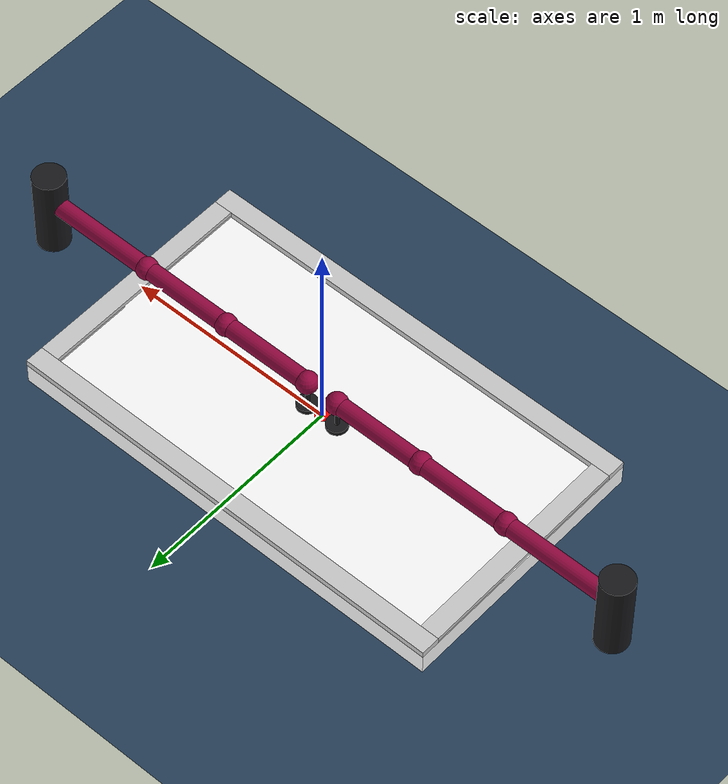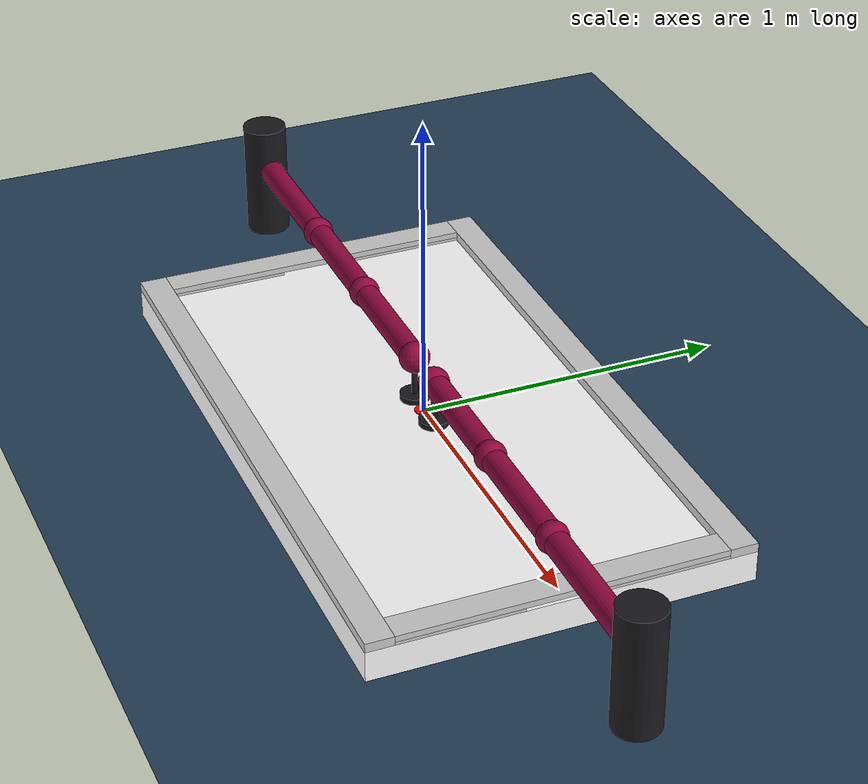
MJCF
<mujoco model="AirHockeySingle">

    <include file="planar_robot_1.xml"/>

    <include file="planar_robot_2.xml"/>

    <include file="../table.xml"/>

    <contact>
        <exclude body1="planar_robot_1/body_ee" body2="table_surface"/>
        <exclude body1="planar_robot_1/body_hand" body2="table_surface"/>
        <exclude body1="planar_robot_1/body_3" body2="table_surface"/>
        <exclude body1="planar_robot_1/body_2" body2="table_surface"/>
        <exclude body1="planar_robot_1/body_1" body2="table_surface"/>
        <exclude body1="planar_robot_1/base" body2="table_surface"/>
        <exclude body1="planar_robot_1/body_ee" body2="rim"/>
        <exclude body1="planar_robot_1/body_hand" body2="rim"/>
        <exclude body1="planar_robot_1/body_3" body2="rim"/>
        <exclude body1="planar_robot_1/body_2" body2="rim"/>
        <exclude body1="planar_robot_1/body_1" body2="rim"/>
        <exclude body1="planar_robot_1/base" body2="rim"/>

        <exclude body1="planar_robot_2/body_ee" body2="table_surface"/>
        <exclude body1="planar_robot_2/body_hand" body2="table_surface"/>
        <exclude body1="planar_robot_2/body_3" body2="table_surface"/>
        <exclude body1="planar_robot_2/body_2" body2="table_surface"/>
        <exclude body1="planar_robot_2/body_1" body2="table_surface"/>
        <exclude body1="planar_robot_2/base" body2="table_surface"/>
        <exclude body1="planar_robot_2/body_ee" body2="rim"/>
        <exclude body1="planar_robot_2/body_hand" body2="rim"/>
        <exclude body1="planar_robot_2/body_3" body2="rim"/>
        <exclude body1="planar_robot_2/body_2" body2="rim"/>
        <exclude body1="planar_robot_2/body_1" body2="rim"/>
        <exclude body1="planar_robot_2/base" body2="rim"/>
    </contact>

</mujoco>

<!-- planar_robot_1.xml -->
<mujoco model="planar_robot_1">
    <compiler autolimits="true" angle="radian"/>
    <asset>
        <material name="dark_red" rgba="0.58 0.03 0.25 1"/>
        <material name="black" rgba="0.1 0.1 0.11 1"/>
    </asset>

    <default>
        <default class="visual">
            <geom contype="0" conaffinity="0"/>
        </default>

        <default class="robot">
            <geom condim="4" solref="0.02 0.3" priority="2"/>
        </default>
    </default>

    <worldbody>
        <body name="planar_robot_1/base" pos="-1.51 0 -0.1">
            <geom type="cylinder" material="black" size="0.075 0.2" pos="0 0 0.2" class="visual"/>
            <inertial pos="0 0 0" mass="1" diaginertia="0.05 0.018 0.044"/>
            <body name="planar_robot_1/body_1" pos="0 0 0.25">
                <joint name="planar_robot_1/joint_1" axis="0 0 1" range="-2.9670597283903604 2.9670597283903604"/>
                <inertial pos="0.25 0 0" mass="3" diaginertia="0.064375 0.064375 0.00375"/>
                <geom class="robot" type="cylinder" material="dark_red" size="0.04 0.275" euler="0 1.57079632679 0" pos="0.275 0 0" />
                <body name="planar_robot_1/body_2" pos="0.55 0 0" >
                    <joint name="planar_robot_1/joint_2" axis="0 0 1" range="-1.8 1.8"/>
                    <inertial pos="0.2 0 0" mass="2" diaginertia="0.0335 0.0335 0.003"/>
                    <geom class="robot" type="cylinder" material="dark_red" size="0.04 0.22" euler="0 1.57079632679 0" pos="0.22 0 0"/>
                    <geom class="robot" type="sphere" material="dark_red" size="0.05"/>
                    <body name="planar_robot_1/body_3" pos="0.44 0 0" >
                        <joint name="planar_robot_1/joint_3" axis="0 0 1" range="-2.0943951023931953 2.0943951023931953"/>
                        <inertial pos="0.2 0 0" mass="2" diaginertia="0.0335 0.0335 0.003"/>
                        <geom class="robot" type="cylinder" material="dark_red" size="0.04 0.22" euler="0 1.57079632679 0" pos="0.22 0 0"/>
                        <geom class="robot" type="sphere" material="dark_red" size="0.05"/>
                        <body name="planar_robot_1/body_hand" pos="0.44 0 0">
                            <inertial pos="0 0 0" mass="0.1" diaginertia="0.0008 0.0023 0.0023"/>
                            <geom class="robot" type="sphere" material="dark_red" size="0.05"/>
                            <geom class="robot" type="cylinder" material="black" size="0.01 0.075" pos="0 0 -0.075"/>
                            <body name="planar_robot_1/body_ee" pos="0 0 -0.15">
                                <inertial pos="0 0 0" mass="0.1" diaginertia="0.0008 0.0023 0.0023"/>
                                <geom class="robot" name="planar_robot_1/ee" type="cylinder" material="black" size="0.04815 0.01" pos="0 0 0.01" friction="0 0 0"/>
                            </body>
                        </body>
                    </body>
                </body>
            </body>
        </body>
    </worldbody>

    <actuator>
        <motor name="planar_robot_1/joint_1" joint="planar_robot_1/joint_1" ctrlrange="-100 100"/>
        <motor name="planar_robot_1/joint_2" joint="planar_robot_1/joint_2" ctrlrange="-50 50"/>
        <motor name="planar_robot_1/joint_3" joint="planar_robot_1/joint_3" ctrlrange="-30 30"/>
    </actuator>
</mujoco>

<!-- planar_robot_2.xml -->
<mujoco model="planar_robot_2">
    <compiler autolimits="true" angle="radian"/>

    <worldbody>
        <body name="planar_robot_2/base" pos="1.51 0 -0.1" quat="0 0 0 1">
            <geom type="cylinder" material="black" size="0.075 0.2" pos="0 0 0.2" class="visual"/>
            <inertial pos="0 0 0" mass="1" diaginertia="0.05 0.018 0.044"/>
            <body name="planar_robot_2/body_1" pos="0 0 0.25">
                <joint name="planar_robot_2/joint_1" axis="0 0 1" range="-2.9670597283903604 2.9670597283903604"/>
                <inertial pos="0.25 0 0" mass="3" diaginertia="0.064375 0.064375 0.00375"/>
                <geom type="cylinder" material="dark_red" size="0.04 0.275" euler="0 1.57079632679 0" pos="0.275 0 0"/>
                <body name="planar_robot_2/body_2" pos="0.55 0 0" >
                    <joint name="planar_robot_2/joint_2" axis="0 0 1" range="-1.8 1.8"/>
                    <inertial pos="0.2 0 0" mass="2" diaginertia="0.0335 0.0335 0.003"/>
                    <geom type="cylinder" material="dark_red" size="0.04 0.22" euler="0 1.57079632679 0" pos="0.22 0 0"/>
                    <geom type="sphere" material="dark_red" size="0.05"/>
                    <body name="planar_robot_2/body_3" pos="0.44 0 0" >
                        <joint name="planar_robot_2/joint_3" axis="0 0 1" range="-2.0943951023931953 2.0943951023931953"/>
                        <inertial pos="0.2 0 0" mass="2" diaginertia="0.0335 0.0335 0.003"/>
                        <geom type="cylinder" material="dark_red" size="0.04 0.22" euler="0 1.57079632679 0" pos="0.22 0 0"/>
                        <geom type="sphere" material="dark_red" size="0.05"/>
                        <body name="planar_robot_2/body_hand" pos="0.44 0 0">
                            <inertial pos="0 0 0" mass="0.1" diaginertia="0.0008 0.0023 0.0023"/>
                            <geom type="sphere" material="dark_red" size="0.05"/>
                            <geom type="cylinder" material="black" size="0.01 0.075" pos="0 0 -0.075"/>
                            <body name="planar_robot_2/body_ee" pos="0 0 -0.15">
                                <inertial pos="0 0 0" mass="0.1" diaginertia="0.0008 0.0023 0.0023"/>
                                <geom name="planar_robot_2/ee" type="cylinder" material="black" size="0.04815 0.01" pos="0 0 0.01" friction="0 0 0"/>
                            </body>
                        </body>
                    </body>
                </body>
            </body>
        </body>
    </worldbody>

    <actuator>
        <motor name="planar_robot_2/joint_1" joint="planar_robot_2/joint_1" ctrlrange="-100 100"/>
        <motor name="planar_robot_2/joint_2" joint="planar_robot_2/joint_2" ctrlrange="-50 50"/>
        <motor name="planar_robot_2/joint_3" joint="planar_robot_2/joint_3" ctrlrange="-30 30"/>
    </actuator>
</mujoco>

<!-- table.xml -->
<mujoco model="table">

    <option timestep="0.001" cone="elliptic" impratio="1"/>

    <asset>
        <material name="grey" specular="0.5" shininess="0.25" rgba="0.8 0.8 0.8 1"/>
        <material name="white" specular="0.5" shininess="0.25" rgba="1.0 1.0 1.0 1"/>
        <material name="red" specular="0.5" shininess="0.25" rgba="1.0 0.0 0.0 1"/>
        <material name="blue" specular="0.5" shininess="0.25" rgba="0.0 0.0 1.0 1"/>
        <material name="transparent" specular="0.5" shininess="0.25" rgba="0.0 0.0 1.0 0"/>

        <texture type="skybox" builtin="gradient" rgb1="0.3 0.5 0.7" rgb2="0 0 0" width="512"
            height="3072"/>
        <texture type="2d" name="groundplane" builtin="checker" mark="edge" rgb1="0.2 0.3 0.4"
            rgb2="0.1 0.2 0.3" markrgb="0.8 0.8 0.8" width="300" height="300"/>
        <material name="groundplane" texture="groundplane" texuniform="true" texrepeat="5 5"
            reflectance="0.2"/>
    </asset>

    <default>
        <geom condim="4" solref="0.02 0.3"/>
        <default class="rim">
            <geom type="box" material="grey" condim="6" friction="10000 0.0 0.0" priority="1"
                  solref="-2000000 -250" solimp="0.99 0.999 0.001 0.5 2"/>
        </default>
    </default>

    <worldbody>
        <body name="table">
            <body name="table_surface">
                <geom name="surface" type="box" material="white" size="1.064 0.609 0.0505" pos="0 0 -0.0505"
                      condim="4" friction="0.08 0.08 0.0" priority="1"
                      solref="0.0125 0.5" solimp="0.9 0.999 0.001 0.5 2"/>
            </body>
            <body name="rim">
                <geom name="rim_home_l" class="rim" size="0.045 0.197 0.005" pos="-1.019 0.322 0.005"/>
                <geom name="rim_home_r" class="rim" size="0.045 0.197 0.005" pos="-1.019 -0.322 0.005"/>
                <geom name="rim_home_top" class="rim" size="0.045 0.519 0.01" pos="-1.019 0 0.02"/>

                <geom name="rim_left" class="rim" size="1.064 0.045 0.015" pos="0 0.564 0.015"/>
                <geom name="rim_right" class="rim" size="1.064 0.045 0.015" pos="0 -0.564 0.015"/>

                <geom name="rim_away_l" class="rim" size="0.045 0.197 0.005" pos="1.019 0.322 0.005"/>
                <geom name="rim_away_r" class="rim" size="0.045 0.197 0.005" pos="1.019 -0.322 0.005"/>
                <geom name="rim_away_top" class="rim" size="0.045 0.519 0.01" pos="1.019 0 0.02"/>
            </body>
        </body>

        <body name="base" pos="0 0 0">
            <joint name="puck_x" type="slide" axis="1 0 0" damping="0.005" limited="false"/>
            <joint name="puck_y" type="slide" axis="0 1 0" damping="0.005" limited="false"/>
            <joint name="puck_yaw" type="hinge" axis="0 0 1" damping="2e-6" limited="false"/>
            <body name="puck">
                <geom pos="0 0 0" name="puck" type="cylinder" material="red" size="0.03165 0.003"
                      condim="4" priority="0"/>
                <geom pos="0.02 0 0" type="cylinder" material="blue" size="0.01 0.0031"
                      condim="4" contype="0" conaffinity="0"/>
                <inertial pos="0 0 0" mass="0.01" diaginertia="2.5e-6 2.5e-6 5e-6"/>
            </body>
        </body>
    </worldbody>

    <contact>
        <exclude body1="puck" body2="table_surface"/>
    </contact>

    <worldbody>
        <light pos="0 0 3" dir="0 0 -1" directional="true"/>
        <geom pos="0 0 -0.1" name="floor" size="0 0 0.05" type="plane" material="groundplane"/>
    </worldbody>

    <worldbody>
        <body name="puck_record" pos="0 0 0">
            <joint name="puck_record_x" type="slide" axis="1 0 0" damping="0.005" limited="false"/>
            <joint name="puck_record_y" type="slide" axis="0 1 0" damping="0.005" limited="false"/>
            <inertial pos="0 0 0" mass="0.01" diaginertia="2.5e-6 2.5e-6 5e-6"/>
            <body>
                <joint name="puck_record_yaw_vis" type="hinge" axis="0 0 1" damping="2e-6" limited="false"/>
                <geom pos="0 0 0" name="puck_record" type="ellipsoid" size="0.03165 0.03165 0.004" material="transparent"
                  condim="4" friction="0.1 0 0" contype="0" conaffinity="0"/>
            </body>
            <body>
                <joint name="puck_record_yaw" type="hinge" axis="0 0 1" damping="2e-6" limited="false"/>
                <geom pos="0.016 0 0" zaxis="1 0 0" name="puck_record_ori" type="cylinder" material="transparent" size="0.0045 0.016 "
                      condim="4" friction="0.1 0 0" contype="0" conaffinity="0"/>
                <inertial pos="0 0 0" mass="0.01" diaginertia="2.5e-6 2.5e-6 5e-6"/>
            </body>
        </body>
    </worldbody>
</mujoco>
